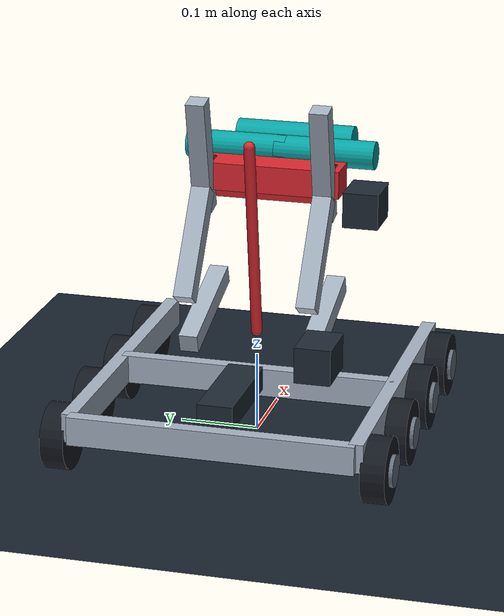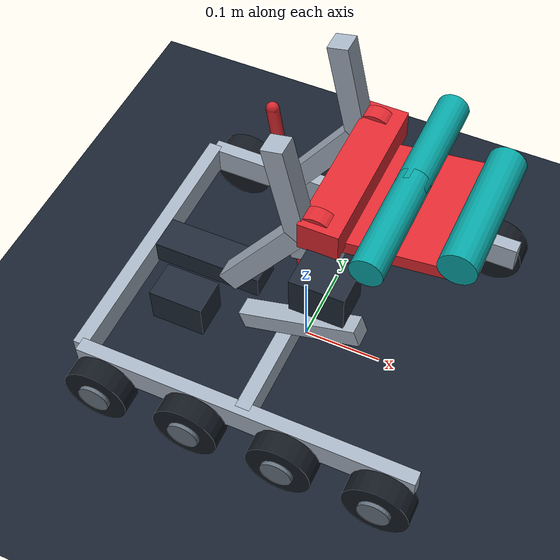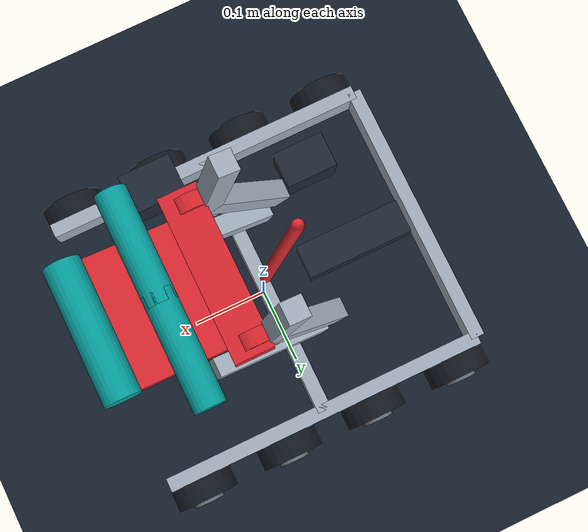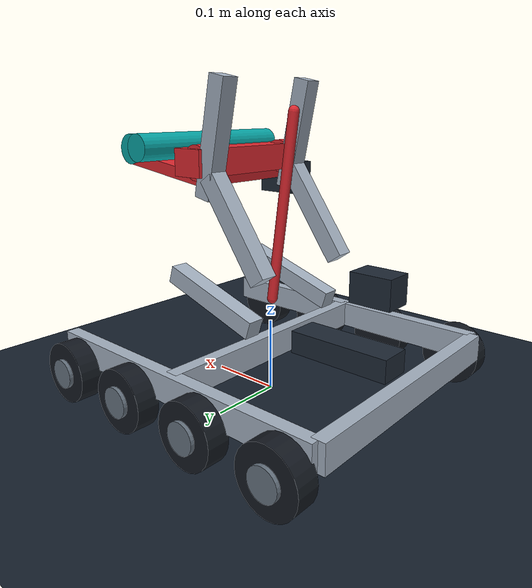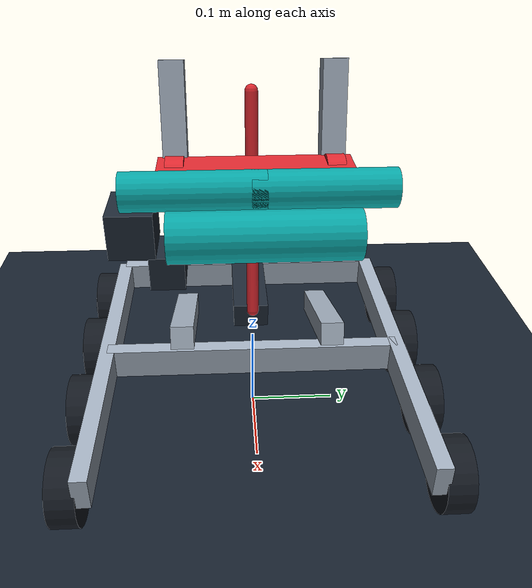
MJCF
<mujoco model="Arc-Rail Placement Trolley"><compiler angle="degree" /><visual><global offwidth="800" offheight="600" /><quality offsamples="0" /><headlight ambient=".45 .45 .45" /></visual><worldbody><light pos="0 -1 3" castshadow="false" /><geom type="plane" size="2 2 .1" rgba=".09 .13 .18 1" /><geom type="box" pos="0 -0.1775 0.066275" size="0.215 0.009 0.018" euler="0 0 0" rgba=".65 .7 .76 1" contype="0" conaffinity="0" /><geom type="box" pos="0 0.1775 0.066275" size="0.215 0.009 0.018" euler="0 0 0" rgba=".65 .7 .76 1" contype="0" conaffinity="0" /><geom type="box" pos="-0.215 0 0.066275" size="0.009 0.1775 0.018" euler="0 0 0" rgba=".65 .7 .76 1" contype="0" conaffinity="0" /><geom type="box" pos="0 0 0.066275" size="0.009 0.1775 0.018" euler="0 0 0" rgba=".65 .7 .76 1" contype="0" conaffinity="0" /><geom type="cylinder" pos="-0.18 -0.19849999999999998 0.041275" size="0.041275 0.015" euler="90 0 0" rgba=".08 .1 .13 1" contype="0" conaffinity="0" /><geom type="cylinder" pos="-0.18 -0.2155 0.041275" size="0.019812 0.003" euler="90 0 0" rgba=".4 .45 .5 1" contype="0" conaffinity="0" /><geom type="cylinder" pos="-0.06 -0.19849999999999998 0.041275" size="0.041275 0.015" euler="90 0 0" rgba=".08 .1 .13 1" contype="0" conaffinity="0" /><geom type="cylinder" pos="-0.06 -0.2155 0.041275" size="0.019812 0.003" euler="90 0 0" rgba=".4 .45 .5 1" contype="0" conaffinity="0" /><geom type="cylinder" pos="0.06 -0.19849999999999998 0.041275" size="0.041275 0.015" euler="90 0 0" rgba=".08 .1 .13 1" contype="0" conaffinity="0" /><geom type="cylinder" pos="0.06 -0.2155 0.041275" size="0.019812 0.003" euler="90 0 0" rgba=".4 .45 .5 1" contype="0" conaffinity="0" /><geom type="cylinder" pos="0.18 -0.19849999999999998 0.041275" size="0.041275 0.015" euler="90 0 0" rgba=".08 .1 .13 1" contype="0" conaffinity="0" /><geom type="cylinder" pos="0.18 -0.2155 0.041275" size="0.019812 0.003" euler="90 0 0" rgba=".4 .45 .5 1" contype="0" conaffinity="0" /><geom type="cylinder" pos="-0.18 0.19849999999999998 0.041275" size="0.041275 0.015" euler="90 0 0" rgba=".08 .1 .13 1" contype="0" conaffinity="0" /><geom type="cylinder" pos="-0.18 0.2155 0.041275" size="0.019812 0.003" euler="90 0 0" rgba=".4 .45 .5 1" contype="0" conaffinity="0" /><geom type="cylinder" pos="-0.06 0.19849999999999998 0.041275" size="0.041275 0.015" euler="90 0 0" rgba=".08 .1 .13 1" contype="0" conaffinity="0" /><geom type="cylinder" pos="-0.06 0.2155 0.041275" size="0.019812 0.003" euler="90 0 0" rgba=".4 .45 .5 1" contype="0" conaffinity="0" /><geom type="cylinder" pos="0.06 0.19849999999999998 0.041275" size="0.041275 0.015" euler="90 0 0" rgba=".08 .1 .13 1" contype="0" conaffinity="0" /><geom type="cylinder" pos="0.06 0.2155 0.041275" size="0.019812 0.003" euler="90 0 0" rgba=".4 .45 .5 1" contype="0" conaffinity="0" /><geom type="cylinder" pos="0.18 0.19849999999999998 0.041275" size="0.041275 0.015" euler="90 0 0" rgba=".08 .1 .13 1" contype="0" conaffinity="0" /><geom type="cylinder" pos="0.18 0.2155 0.041275" size="0.019812 0.003" euler="90 0 0" rgba=".4 .45 .5 1" contype="0" conaffinity="0" /><geom type="box" pos="-0.125 0.0 0.091275" size="0.07 0.022 0.015" euler="0 0 0" rgba=".12 .16 .21 1" contype="0" conaffinity="0" /><geom type="box" pos="0.03 0.078 0.145" size="0.075 0.012 0.012" euler="0.0 -18.0 0.0" rgba=".65 .7 .76 1" contype="0" conaffinity="0" /><geom type="box" pos="0.03 -0.078 0.145" size="0.075 0.012 0.012" euler="0.0 -18.0 0.0" rgba=".65 .7 .76 1" contype="0" conaffinity="0" /><geom type="box" pos="-0.015 0.078 0.245" size="0.0725 0.012 0.012" euler="0.0 -55.0 0.0" rgba=".65 .7 .76 1" contype="0" conaffinity="0" /><geom type="box" pos="-0.015 -0.078 0.245" size="0.0725 0.012 0.012" euler="0.0 -55.0 0.0" rgba=".65 .7 .76 1" contype="0" conaffinity="0" /><geom type="box" pos="0.02 0.078 0.35" size="0.075 0.012 0.012" euler="0.0 -102.0 0.0" rgba=".65 .7 .76 1" contype="0" conaffinity="0" /><geom type="box" pos="0.02 -0.078 0.35" size="0.075 0.012 0.012" euler="0.0 -102.0 0.0" rgba=".65 .7 .76 1" contype="0" conaffinity="0" /><geom type="box" pos="0.055 0.0 0.32" size="0.0225 0.095 0.0175" euler="0.0 0.0 0.0" rgba=".87 .16 .19 1" contype="0" conaffinity="0" /><geom type="cylinder" pos="0.048 0.078 0.32" size="0.0225 0.009" euler="90.0 0.0 0.0" rgba=".87 .16 .19 1" contype="0" conaffinity="0" /><geom type="cylinder" pos="0.048 -0.078 0.32" size="0.0225 0.009" euler="90.0 0.0 0.0" rgba=".87 .16 .19 1" contype="0" conaffinity="0" /><geom type="box" pos="0.125 0.0 0.307" size="0.075 0.075 0.008" euler="0.0 -8.0 0.0" rgba=".87 .16 .19 1" contype="0" conaffinity="0" /><geom type="cylinder" pos="0.118 0.058 0.337" size="0.018 0.065" euler="90.0 0.0 0.0" rgba=".03 .65 .65 1" contype="0" conaffinity="0" /><geom type="cylinder" pos="0.118 -0.058 0.337" size="0.018 0.065" euler="90.0 0.0 0.0" rgba=".03 .65 .65 1" contype="0" conaffinity="0" /><geom type="cylinder" pos="0.195 0.0 0.33" size="0.021 0.0775" euler="90.0 0.0 0.0" rgba=".03 .65 .65 1" contype="0" conaffinity="0" /><geom type="capsule" pos="-0.02 0.0 0.258" size="0.007 0.1255" euler="0.0 -8.0 0.0" rgba=".87 .16 .19 1" contype="0" conaffinity="0" /><geom type="box" pos="-0.105 -0.105 0.145" size="0.0325 0.0225 0.0225" euler="0.0 0.0 0.0" rgba=".12 .16 .21 1" contype="0" conaffinity="0" /><geom type="box" pos="0.075 -0.12 0.285" size="0.03 0.0225 0.0225" euler="0.0 0.0 0.0" rgba=".12 .16 .21 1" contype="0" conaffinity="0" /></worldbody></mujoco>
